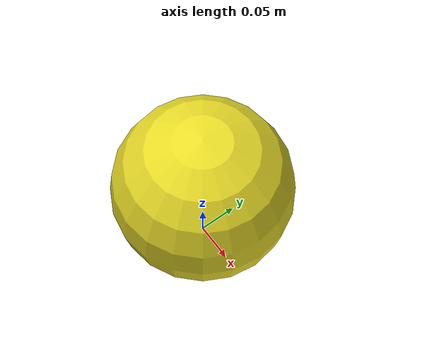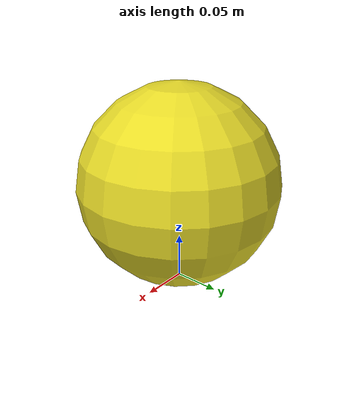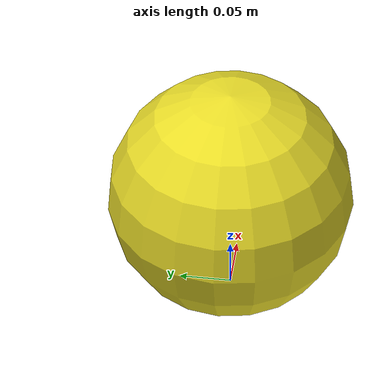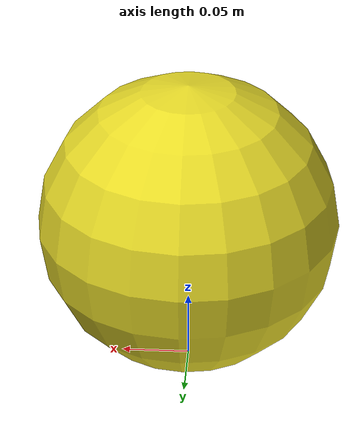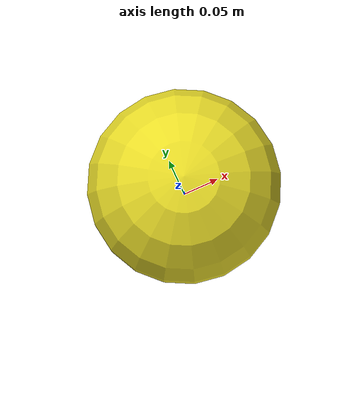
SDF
<sdf version="1.5">
 <world name="mtbasestation">
  <include><uri>model://sun</uri></include>
  <physics type="ode">
   <max_step_size>0.03125</max_step_size>
   <real_time_update_rate>32</real_time_update_rate>
   <gravity>0 0 -9.8</gravity>
  </physics>
  <include><uri>model://genbs_ball</uri><name>ball_bs</name></include>
  <include><uri>model://bs_ball</uri><name>ball_1</name></include>
  <include><uri>model://bs_ball</uri><name>ball_2</name></include>
  <include><uri>model://bs_ball</uri><name>ball_3</name></include>
  <include><uri>model://bs_ball</uri><name>ball_4</name></include>
  <include><uri>model://bs_ball</uri><name>ball_5</name></include>
  <plugin filename="libbs_plugin.so" name="bs_plugin"/>
 </world>
</sdf>

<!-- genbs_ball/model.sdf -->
<sdf version="1.5">
  <model name="genbs_ball">
   <pose>0 0 0.115 0 3.14 0</pose>
    <static>false</static>
    <link name="ball">
        <inertial>
          <mass>0.41</mass>
          <inertia>
            <ixx>3.2e-03</ixx>
            <iyy>3.2e-03</iyy>
            <izz>3.2e-03</izz>
            <ixy>0</ixy>
            <ixz>0</ixz>
            <iyz>0</iyz>
          </inertia>
        </inertial>
      <collision name="collision">
        <geometry>
          <sphere>
            <radius>0.11</radius>
          </sphere>
        </geometry>
        <surface>
            <bounce>
              <restitution_coefficient>0.8</restitution_coefficient>
              <threshold>0.01</threshold>
            </bounce>
            <friction>
              <ode>
                <mu>0.1</mu>
                <mu2>0.1</mu2>
              </ode>
            </friction>
            <contact>
              <ode>
                <max_vel>30</max_vel>
              </ode>
            </contact>
          </surface>
      </collision>
      <visual name="visual">
        <geometry>
            <sphere>
            <radius>0.11</radius>
          </sphere>
         </geometry>
         <material>
          <script>
            <uri>model://msl_yellow_ball/materials/scripts/</uri>
            <uri>model://msl_yellow_ball/materials/textures/</uri>
            <name>RoboCupBall/Yellow</name>
          </script>
        </material>
      </visual>

      <velocity_decay>
        <linear>0.00001</linear>
        <angular>0.0005</angular>
      </velocity_decay>
      <self_collide>false</self_collide>
      <gravity>true</gravity>
    </link>
  </model>
</sdf>

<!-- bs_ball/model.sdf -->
<sdf version="1.5">
  <model name="bs_ball">
   <pose>0 0 0.115 0 3.14 0</pose>
    <static>false</static>
    <link name="ball">
        <inertial>
          <mass>0.41</mass>
          <inertia>
            <ixx>3.2e-03</ixx>
            <iyy>3.2e-03</iyy>
            <izz>3.2e-03</izz>
            <ixy>0</ixy>
            <ixz>0</ixz>
            <iyz>0</iyz>
          </inertia>
        </inertial>
      <collision name="collision">
        <geometry>
          <sphere>
            <radius>0.11</radius>
          </sphere>
        </geometry>
        <surface>
            <bounce>
              <restitution_coefficient>0.6</restitution_coefficient>
              <threshold>0.01</threshold>
            </bounce>
            <friction>
              <ode>
                <mu>1</mu>
                <mu2>1</mu2>
                <slip1>0.0</slip1>
                <slip2>0.0</slip2>
              </ode>
            </friction>
            <contact>
              <ode>
                <max_vel>10</max_vel>
                <min_depth>0.001</min_depth>
              </ode>
            </contact>
          </surface>
      </collision>
      <visual name="visual">
        <geometry>
            <sphere>
            <radius>0.11</radius>
          </sphere>
         </geometry>
         <material>
          <script>
            <uri>model://msl_orange_ball/materials/scripts/</uri>
            <uri>model://msl_orange_ball/materials/textures/</uri>
            <name>RoboCupBall/Orange</name>
          </script>
        </material>
      </visual>

      <velocity_decay>
        <linear>0.001</linear>
        <angular>0.05</angular>
      </velocity_decay>
      <self_collide>false</self_collide>
      <gravity>true</gravity>
    </link>
  </model>
</sdf>
